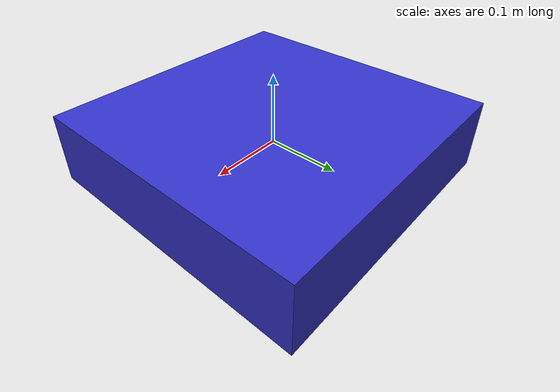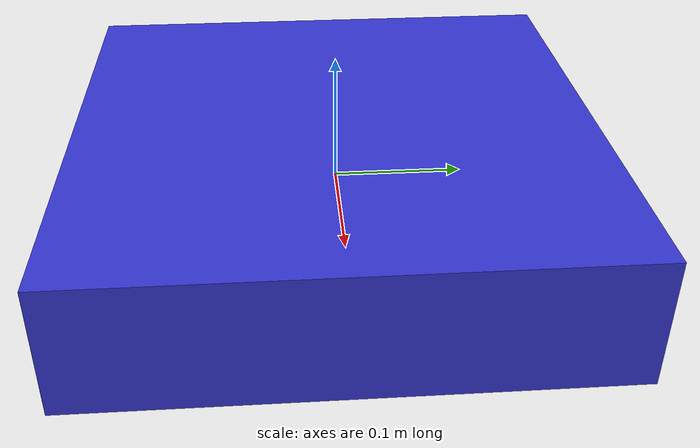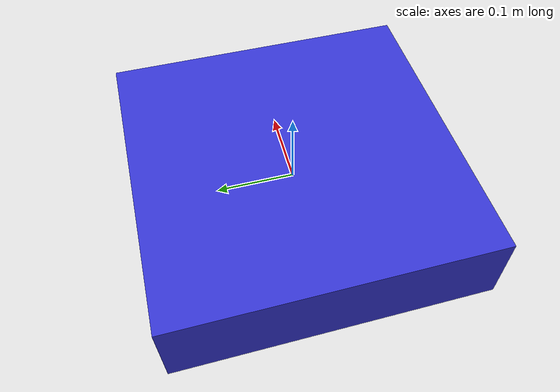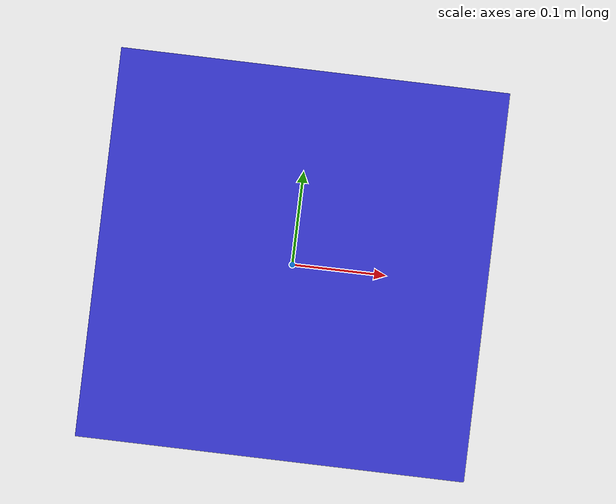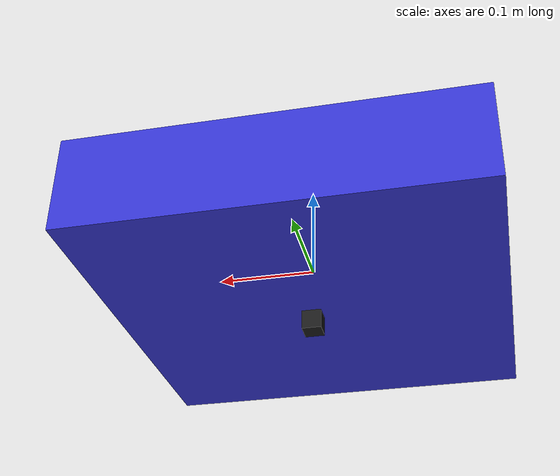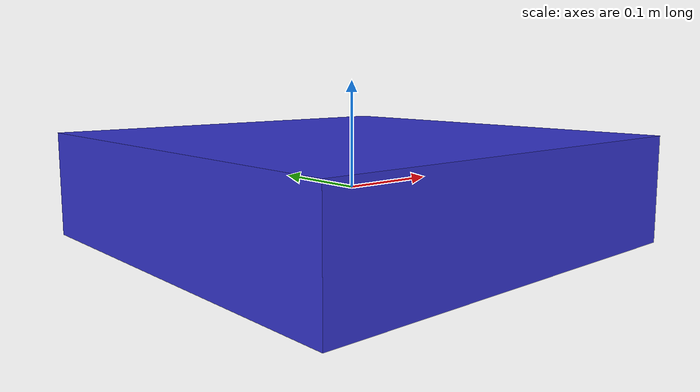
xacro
<?xml version="1.0"?>
<robot xmlns:xacro="http://www.ros.org/wiki/xacro" name="scout_drone">

  <link name="base_link">
    <inertial>
      <mass value="2.0"/>
      <inertia ixx="0.01" ixy="0" ixz="0" iyy="0.01" iyz="0" izz="0.01"/>
    </inertial>
    <visual>
      <geometry>
        <box size="0.4 0.4 0.1"/>
      </geometry>
      <material name="scout_body">
        <color rgba="0.2 0.2 0.8 1.0"/>
      </material>
    </visual>
    <collision>
      <geometry>
        <box size="0.4 0.4 0.1"/>
      </geometry>
    </collision>
  </link>

  <!-- Downward-facing camera -->
  <link name="camera_link">
    <inertial>
      <mass value="0.1"/>
      <inertia ixx="0.001" ixy="0" ixz="0" iyy="0.001" iyz="0" izz="0.001"/>
    </inertial>
    <visual>
      <geometry>
        <box size="0.02 0.02 0.02"/>
      </geometry>
      <material name="camera_body">
        <color rgba="0.1 0.1 0.1 1.0"/>
      </material>
    </visual>
  </link>

  <joint name="camera_joint" type="fixed">
    <parent link="base_link"/>
    <child link="camera_link"/>
    <origin xyz="0 0 -0.06" rpy="0 1.5708 0"/>
  </joint>

</robot>
